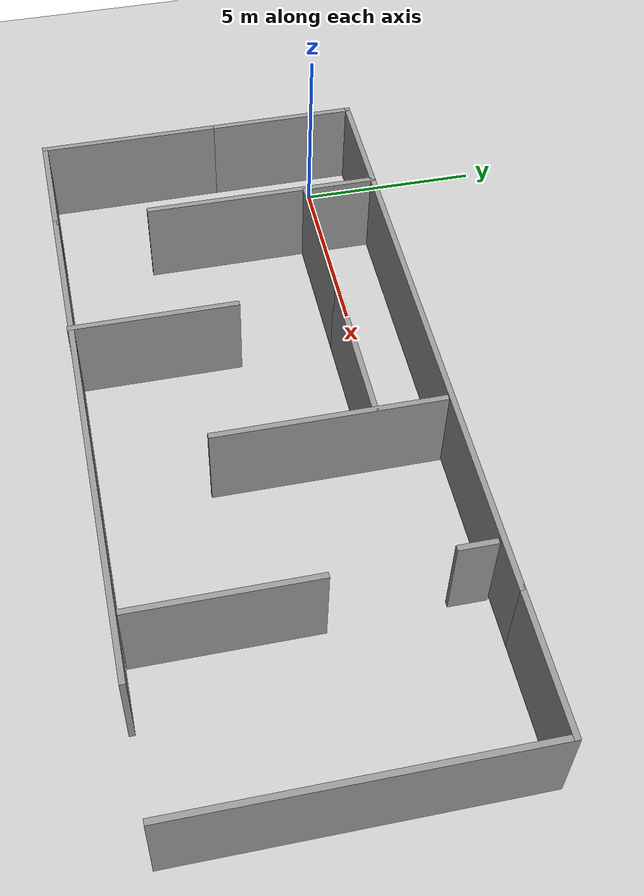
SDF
<sdf version='1.6'>
  <world name='default'>
<plugin name='ardupilot_sitl_gazebo_plugin' filename='libardupilot_sitl_gazebo_plugin_rover.so'>
      <UAV_MODEL>rover</UAV_MODEL>
    </plugin>
    <light name='sun' type='directional'>
      <cast_shadows>1</cast_shadows>
      <pose frame=''>0 0 10 0 -0 0</pose>
      <diffuse>0.8 0.8 0.8 1</diffuse>
      <specular>0.2 0.2 0.2 1</specular>
      <attenuation>
        <range>1000</range>
        <constant>0.9</constant>
        <linear>0.01</linear>
        <quadratic>0.001</quadratic>
      </attenuation>
      <direction>-0.5 0.1 -0.9</direction>
    </light>
    <model name='ground_plane'>
      <static>1</static>
      <link name='link'>
        <collision name='collision'>
          <geometry>
            <plane>
              <normal>0 0 1</normal>
              <size>100 100</size>
            </plane>
          </geometry>
          <surface>
            <friction>
              <ode>
                <mu>100</mu>
                <mu2>50</mu2>
              </ode>
              <torsional>
                <ode/>
              </torsional>
            </friction>
            <contact>
              <ode/>
            </contact>
            <bounce/>
          </surface>
          <max_contacts>10</max_contacts>
        </collision>
        <visual name='visual'>
          <cast_shadows>0</cast_shadows>
          <geometry>
            <plane>
              <normal>0 0 1</normal>
              <size>100 100</size>
            </plane>
          </geometry>
          <material>
            <script>
              <uri>file://media/materials/scripts/gazebo.material</uri>
              <name>Gazebo/Grey</name>
            </script>
          </material>
        </visual>
        <self_collide>0</self_collide>
        <kinematic>0</kinematic>
      </link>
    </model>
    <gravity>0 0 -9.8</gravity>
    <magnetic_field>6e-06 2.3e-05 -4.2e-05</magnetic_field>
    <atmosphere type='adiabatic'/>
    <physics name='default_physics' default='0' type='ode'>
      <max_step_size>0.001</max_step_size>
      <real_time_factor>1</real_time_factor>
      <real_time_update_rate>1000</real_time_update_rate>
    </physics>
    <scene>
      <ambient>0.4 0.4 0.4 1</ambient>
      <background>0.7 0.7 0.7 1</background>
      <shadows>1</shadows>
    </scene>
    <spherical_coordinates>
      <surface_model>EARTH_WGS84</surface_model>
      <latitude_deg>0</latitude_deg>
      <longitude_deg>0</longitude_deg>
      <elevation>0</elevation>
      <heading_deg>0</heading_deg>
    </spherical_coordinates>
    <model name='custom_maze_2'>
      <pose frame=''>9.28224 -3.17982 0 0 -0 0</pose>
      <link name='Wall_1'>
        <collision name='Wall_1_Collision'>
          <geometry>
            <box>
              <size>4.25 0.15 2.5</size>
            </box>
          </geometry>
          <pose frame=''>0 0 1.25 0 -0 0</pose>
          <max_contacts>10</max_contacts>
          <surface>
            <contact>
              <ode/>
            </contact>
            <bounce/>
            <friction>
              <torsional>
                <ode/>
              </torsional>
              <ode/>
            </friction>
          </surface>
        </collision>
        <visual name='Wall_1_Visual'>
          <pose frame=''>0 0 1.25 0 -0 0</pose>
          <geometry>
            <box>
              <size>4.25 0.15 2.5</size>
            </box>
          </geometry>
          <material>
            <script>
              <uri>file://media/materials/scripts/gazebo.material</uri>
              <name>Gazebo/Grey</name>
            </script>
            <ambient>1 1 1 1</ambient>
          </material>
          <meta>
            <layer>0</layer>
          </meta>
        </visual>
        <pose frame=''>-10.15 2.43853 0 0 -0 1.5708</pose>
        <self_collide>0</self_collide>
        <kinematic>0</kinematic>
      </link>
      <link name='Wall_10'>
        <collision name='Wall_10_Collision'>
          <geometry>
            <box>
              <size>4 0.15 2.5</size>
            </box>
          </geometry>
          <pose frame=''>0 0 1.25 0 -0 0</pose>
          <max_contacts>10</max_contacts>
          <surface>
            <contact>
              <ode/>
            </contact>
            <bounce/>
            <friction>
              <torsional>
                <ode/>
              </torsional>
              <ode/>
            </friction>
          </surface>
        </collision>
        <visual name='Wall_10_Visual'>
          <pose frame=''>0 0 1.25 0 -0 0</pose>
          <geometry>
            <box>
              <size>4 0.15 2.5</size>
            </box>
          </geometry>
          <material>
            <script>
              <uri>file://media/materials/scripts/gazebo.material</uri>
              <name>Gazebo/Grey</name>
            </script>
            <ambient>1 1 1 1</ambient>
          </material>
          <meta>
            <layer>0</layer>
          </meta>
        </visual>
        <pose frame=''>-5.04469 2.54462 0 0 -0 0</pose>
        <self_collide>0</self_collide>
        <kinematic>0</kinematic>
      </link>
      <link name='Wall_14'>
        <collision name='Wall_14_Collision'>
          <geometry>
            <box>
              <size>4.5 0.15 2.5</size>
            </box>
          </geometry>
          <pose frame=''>0 0 1.25 0 -0 0</pose>
          <max_contacts>10</max_contacts>
          <surface>
            <contact>
              <ode/>
            </contact>
            <bounce/>
            <friction>
              <torsional>
                <ode/>
              </torsional>
              <ode/>
            </friction>
          </surface>
        </collision>
        <visual name='Wall_14_Visual'>
          <pose frame=''>0 0 1.25 0 -0 0</pose>
          <geometry>
            <box>
              <size>4.5 0.15 2.5</size>
            </box>
          </geometry>
          <material>
            <script>
              <uri>file://media/materials/scripts/gazebo.material</uri>
              <name>Gazebo/Grey</name>
            </script>
            <ambient>1 1 1 1</ambient>
          </material>
          <meta>
            <layer>0</layer>
          </meta>
        </visual>
        <pose frame=''>-3.10688 -2.31353 0 0 0 -1.5708</pose>
        <self_collide>0</self_collide>
        <kinematic>0</kinematic>
      </link>
      <link name='Wall_16'>
        <collision name='Wall_16_Collision'>
          <geometry>
            <box>
              <size>13.75 0.15 2.5</size>
            </box>
          </geometry>
          <pose frame=''>0 0 1.25 0 -0 0</pose>
          <max_contacts>10</max_contacts>
          <surface>
            <contact>
              <ode/>
            </contact>
            <bounce/>
            <friction>
              <torsional>
                <ode/>
              </torsional>
              <ode/>
            </friction>
          </surface>
        </collision>
        <visual name='Wall_16_Visual'>
          <pose frame=''>0 0 1.25 0 -0 0</pose>
          <geometry>
            <box>
              <size>13.75 0.15 2.5</size>
            </box>
          </geometry>
          <material>
            <script>
              <uri>file://media/materials/scripts/gazebo.material</uri>
              <name>Gazebo/Grey</name>
            </script>
            <ambient>1 1 1 1</ambient>
          </material>
          <meta>
            <layer>0</layer>
          </meta>
        </visual>
        <pose frame=''>-0.25 4.48853 0 0 -0 0</pose>
        <self_collide>0</self_collide>
        <kinematic>0</kinematic>
      </link>
      <link name='Wall_18'>
        <collision name='Wall_18_Collision'>
          <geometry>
            <box>
              <size>3.75 0.15 2.5</size>
            </box>
          </geometry>
          <pose frame=''>0 0 1.25 0 -0 0</pose>
          <max_contacts>10</max_contacts>
          <surface>
            <contact>
              <ode/>
            </contact>
            <bounce/>
            <friction>
              <torsional>
                <ode/>
              </torsional>
              <ode/>
            </friction>
          </surface>
        </collision>
        <visual name='Wall_18_Visual'>
          <pose frame=''>0 0 1.25 0 -0 0</pose>
          <geometry>
            <box>
              <size>3.75 0.15 2.5</size>
            </box>
          </geometry>
          <material>
            <script>
              <uri>file://media/materials/scripts/gazebo.material</uri>
              <name>Gazebo/Grey</name>
            </script>
            <ambient>1 1 1 1</ambient>
          </material>
          <meta>
            <layer>0</layer>
          </meta>
        </visual>
        <pose frame=''>8.35 4.48853 0 0 -0 0</pose>
        <self_collide>0</self_collide>
        <kinematic>0</kinematic>
      </link>
      <link name='Wall_2'>
        <collision name='Wall_2_Collision'>
          <geometry>
            <box>
              <size>3.25 0.15 2.5</size>
            </box>
          </geometry>
          <pose frame=''>0 0 1.25 0 -0 0</pose>
          <max_contacts>10</max_contacts>
          <surface>
            <contact>
              <ode/>
            </contact>
            <bounce/>
            <friction>
              <torsional>
                <ode/>
              </torsional>
              <ode/>
            </friction>
          </surface>
        </collision>
        <visual name='Wall_2_Visual'>
          <pose frame=''>0 0 1.25 0 -0 0</pose>
          <geometry>
            <box>
              <size>3.25 0.15 2.5</size>
            </box>
          </geometry>
          <material>
            <script>
              <uri>file://media/materials/scripts/gazebo.material</uri>
              <name>Gazebo/Grey</name>
            </script>
            <ambient>1 1 1 1</ambient>
          </material>
          <meta>
            <layer>0</layer>
          </meta>
        </visual>
        <pose frame=''>-8.6 4.48853 0 0 -0 0</pose>
        <self_collide>0</self_collide>
        <kinematic>0</kinematic>
      </link>
      <link name='Wall_20'>
        <collision name='Wall_20_Collision'>
          <geometry>
            <box>
              <size>6 0.15 2.5</size>
            </box>
          </geometry>
          <pose frame=''>0 0 1.25 0 -0 0</pose>
          <max_contacts>10</max_contacts>
          <surface>
            <contact>
              <ode/>
            </contact>
            <bounce/>
            <friction>
              <torsional>
                <ode/>
              </torsional>
              <ode/>
            </friction>
          </surface>
        </collision>
        <visual name='Wall_20_Visual'>
          <pose frame=''>0 0 1.25 0 -0 0</pose>
          <geometry>
            <box>
              <size>6 0.15 2.5</size>
            </box>
          </geometry>
          <material>
            <script>
              <uri>file://media/materials/scripts/gazebo.material</uri>
              <name>Gazebo/Grey</name>
            </script>
            <ambient>1 1 1 1</ambient>
          </material>
          <meta>
            <layer>0</layer>
          </meta>
        </visual>
        <pose frame=''>1.02236 1.39688 0 0 0 -1.5708</pose>
        <self_collide>0</self_collide>
        <kinematic>0</kinematic>
      </link>
      <link name='Wall_22'>
        <collision name='Wall_22_Collision'>
          <geometry>
            <box>
              <size>4.25 0.15 2.5</size>
            </box>
          </geometry>
          <pose frame=''>0 0 1.25 0 -0 0</pose>
          <max_contacts>10</max_contacts>
          <surface>
            <contact>
              <ode/>
            </contact>
            <bounce/>
            <friction>
              <torsional>
                <ode/>
              </torsional>
              <ode/>
            </friction>
          </surface>
        </collision>
        <visual name='Wall_22_Visual'>
          <pose frame=''>0 0 1.25 0 -0 0</pose>
          <geometry>
            <box>
              <size>4.25 0.15 2.5</size>
            </box>
          </geometry>
          <material>
            <script>
              <uri>file://media/materials/scripts/gazebo.material</uri>
              <name>Gazebo/Grey</name>
            </script>
            <ambient>1 1 1 1</ambient>
          </material>
          <meta>
            <layer>0</layer>
          </meta>
        </visual>
        <pose frame=''>-1.06969 2.54462 0 0 -0 0</pose>
        <self_collide>0</self_collide>
        <kinematic>0</kinematic>
      </link>
      <link name='Wall_25'>
        <collision name='Wall_25_Collision'>
          <geometry>
            <box>
              <size>1 0.15 2.5</size>
            </box>
          </geometry>
          <pose frame=''>0 0 1.25 0 -0 0</pose>
          <max_contacts>10</max_contacts>
          <surface>
            <contact>
              <ode/>
            </contact>
            <bounce/>
            <friction>
              <torsional>
                <ode/>
              </torsional>
              <ode/>
            </friction>
          </surface>
        </collision>
        <visual name='Wall_25_Visual'>
          <pose frame=''>0 0 1.25 0 -0 0</pose>
          <geometry>
            <box>
              <size>1 0.15 2.5</size>
            </box>
          </geometry>
          <material>
            <script>
              <uri>file://media/materials/scripts/gazebo.material</uri>
              <name>Gazebo/Grey</name>
            </script>
            <ambient>1 1 1 1</ambient>
          </material>
          <meta>
            <layer>0</layer>
          </meta>
        </visual>
        <pose frame=''>5.27899 3.86171 0 0 0 -1.5708</pose>
        <self_collide>0</self_collide>
        <kinematic>0</kinematic>
      </link>
      <link name='Wall_27'>
        <collision name='Wall_27_Collision'>
          <geometry>
            <box>
              <size>4.75 0.15 2.5</size>
            </box>
          </geometry>
          <pose frame=''>0 0 1.25 0 -0 0</pose>
          <max_contacts>10</max_contacts>
          <surface>
            <contact>
              <ode/>
            </contact>
            <bounce/>
            <friction>
              <torsional>
                <ode/>
              </torsional>
              <ode/>
            </friction>
          </surface>
        </collision>
        <visual name='Wall_27_Visual'>
          <pose frame=''>0 0 1.25 0 -0 0</pose>
          <geometry>
            <box>
              <size>4.75 0.15 2.5</size>
            </box>
          </geometry>
          <material>
            <script>
              <uri>file://media/materials/scripts/gazebo.material</uri>
              <name>Gazebo/Grey</name>
            </script>
            <ambient>1 1 1 1</ambient>
          </material>
          <meta>
            <layer>0</layer>
          </meta>
        </visual>
        <pose frame=''>5.38453 -1.98849 0 0 0 -1.5708</pose>
        <self_collide>0</self_collide>
        <kinematic>0</kinematic>
      </link>
      <link name='Wall_29'>
        <collision name='Wall_29_Collision'>
          <geometry>
            <box>
              <size>9 0.15 2.5</size>
            </box>
          </geometry>
          <pose frame=''>0 0 1.25 0 -0 0</pose>
          <max_contacts>10</max_contacts>
          <surface>
            <contact>
              <ode/>
            </contact>
            <bounce/>
            <friction>
              <torsional>
                <ode/>
              </torsional>
              <ode/>
            </friction>
          </surface>
        </collision>
        <visual name='Wall_29_Visual'>
          <pose frame=''>0 0 1.25 0 -0 0</pose>
          <geometry>
            <box>
              <size>9 0.15 2.5</size>
            </box>
          </geometry>
          <material>
            <script>
              <uri>file://media/materials/scripts/gazebo.material</uri>
              <name>Gazebo/Grey</name>
            </script>
            <ambient>1 1 1 1</ambient>
          </material>
          <meta>
            <layer>0</layer>
          </meta>
        </visual>
        <pose frame=''>10.15 0.063534 0 0 0 -1.5708</pose>
        <self_collide>0</self_collide>
        <kinematic>0</kinematic>
      </link>
      <link name='Wall_3'>
        <collision name='Wall_3_Collision'>
          <geometry>
            <box>
              <size>6.5 0.15 2.5</size>
            </box>
          </geometry>
          <pose frame=''>0 0 1.25 0 -0 0</pose>
          <max_contacts>10</max_contacts>
          <surface>
            <contact>
              <ode/>
            </contact>
            <bounce/>
            <friction>
              <torsional>
                <ode/>
              </torsional>
              <ode/>
            </friction>
          </surface>
        </collision>
        <visual name='Wall_3_Visual'>
          <pose frame=''>0 0 1.25 0 -0 0</pose>
          <geometry>
            <box>
              <size>6.5 0.15 2.5</size>
            </box>
          </geometry>
          <material>
            <script>
              <uri>file://media/materials/scripts/gazebo.material</uri>
              <name>Gazebo/Grey</name>
            </script>
            <ambient>1 1 1 1</ambient>
          </material>
          <meta>
            <layer>0</layer>
          </meta>
        </visual>
        <pose frame=''>-7.05 1.31353 0 0 0 -1.5708</pose>
        <self_collide>0</self_collide>
        <kinematic>0</kinematic>
      </link>
      <link name='Wall_5'>
        <collision name='Wall_5_Collision'>
          <geometry>
            <box>
              <size>5 0.15 2.5</size>
            </box>
          </geometry>
          <pose frame=''>0 0 1.25 0 -0 0</pose>
          <max_contacts>10</max_contacts>
          <surface>
            <contact>
              <ode/>
            </contact>
            <bounce/>
            <friction>
              <torsional>
                <ode/>
              </torsional>
              <ode/>
            </friction>
          </surface>
        </collision>
        <visual name='Wall_5_Visual'>
          <pose frame=''>0 0 1.25 0 -0 0</pose>
          <geometry>
            <box>
              <size>5 0.15 2.5</size>
            </box>
          </geometry>
          <material>
            <script>
              <uri>file://media/materials/scripts/gazebo.material</uri>
              <name>Gazebo/Grey</name>
            </script>
            <ambient>1 1 1 1</ambient>
          </material>
          <meta>
            <layer>0</layer>
          </meta>
        </visual>
        <pose frame=''>-10.15 -2.03647 0 0 0 -1.5708</pose>
        <self_collide>0</self_collide>
        <kinematic>0</kinematic>
      </link>
      <link name='Wall_6'>
        <collision name='Wall_6_Collision'>
          <geometry>
            <box>
              <size>3.25 0.15 2.5</size>
            </box>
          </geometry>
          <pose frame=''>0 0 1.25 0 -0 0</pose>
          <max_contacts>10</max_contacts>
          <surface>
            <contact>
              <ode/>
            </contact>
            <bounce/>
            <friction>
              <torsional>
                <ode/>
              </torsional>
              <ode/>
            </friction>
          </surface>
        </collision>
        <visual name='Wall_6_Visual'>
          <pose frame=''>0 0 1.25 0 -0 0</pose>
          <geometry>
            <box>
              <size>3.25 0.15 2.5</size>
            </box>
          </geometry>
          <material>
            <script>
              <uri>file://media/materials/scripts/gazebo.material</uri>
              <name>Gazebo/Grey</name>
            </script>
            <ambient>1 1 1 1</ambient>
          </material>
          <meta>
            <layer>0</layer>
          </meta>
        </visual>
        <pose frame=''>-8.6 -4.46147 0 0 -0 0</pose>
        <self_collide>0</self_collide>
        <kinematic>0</kinematic>
      </link>
      <link name='Wall_8'>
        <collision name='Wall_8_Collision'>
          <geometry>
            <box>
              <size>14.25 0.15 2.5</size>
            </box>
          </geometry>
          <pose frame=''>0 0 1.25 0 -0 0</pose>
          <max_contacts>10</max_contacts>
          <surface>
            <contact>
              <ode/>
            </contact>
            <bounce/>
            <friction>
              <torsional>
                <ode/>
              </torsional>
              <ode/>
            </friction>
          </surface>
        </collision>
        <visual name='Wall_8_Visual'>
          <pose frame=''>0 0 1.25 0 -0 0</pose>
          <geometry>
            <box>
              <size>14.25 0.15 2.5</size>
            </box>
          </geometry>
          <material>
            <script>
              <uri>file://media/materials/scripts/gazebo.material</uri>
              <name>Gazebo/Grey</name>
            </script>
            <ambient>1 1 1 1</ambient>
          </material>
          <meta>
            <layer>0</layer>
          </meta>
        </visual>
        <pose frame=''>0 -4.46147 0 0 -0 0</pose>
        <self_collide>0</self_collide>
        <kinematic>0</kinematic>
      </link>
      <static>1</static>
    </model>

    <gui fullscreen='0'>
      <camera name='user_camera'>
        <pose frame=''>17.0589 -17.4774 14.9979 0 1.00764 1.62019</pose>
        <view_controller>orbit</view_controller>
        <projection_type>perspective</projection_type>
      </camera>
    </gui>

    <!-- Pluggin for settin regions that will detect whether the rover is in it or no -->
	<plugin filename="libSimEventsPlugin.so" name="event_plugin">

	<region>
	    <name>maze_exit</name>
	    <volume>
	      <min>16.336267 -9.465412 -1</min>
	      <max>19.416 -7.78524 1</max>
	    </volume>
	 </region>
	 <event>
	    <name>maze_exit_event</name>
	    <type>occupied</type>
	    <region>maze_exit</region>
	    <topic>~/region</topic>
	    <msg_data>exited_the_maze</msg_data>
	  </event>
	</plugin>
  </world>
</sdf>
